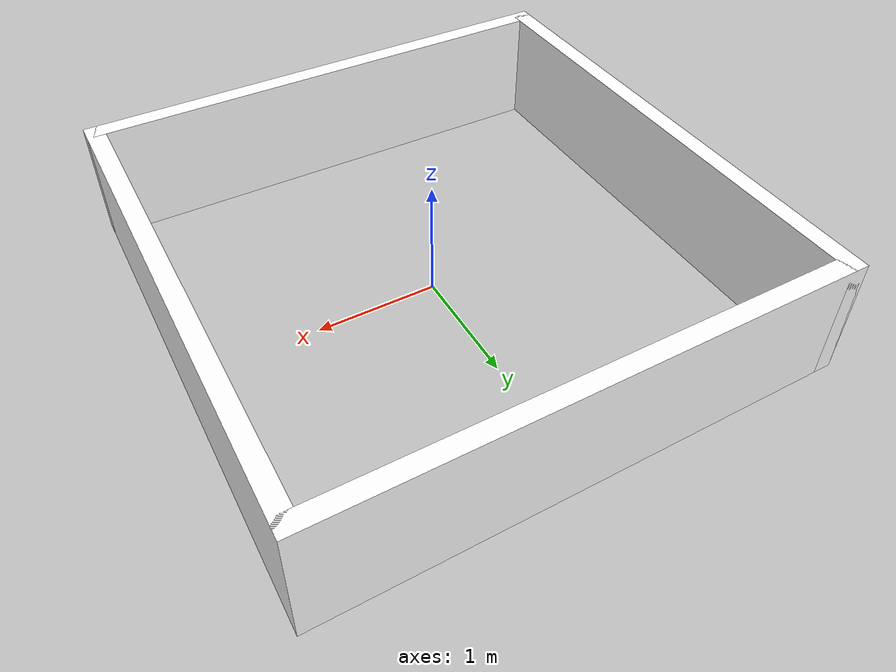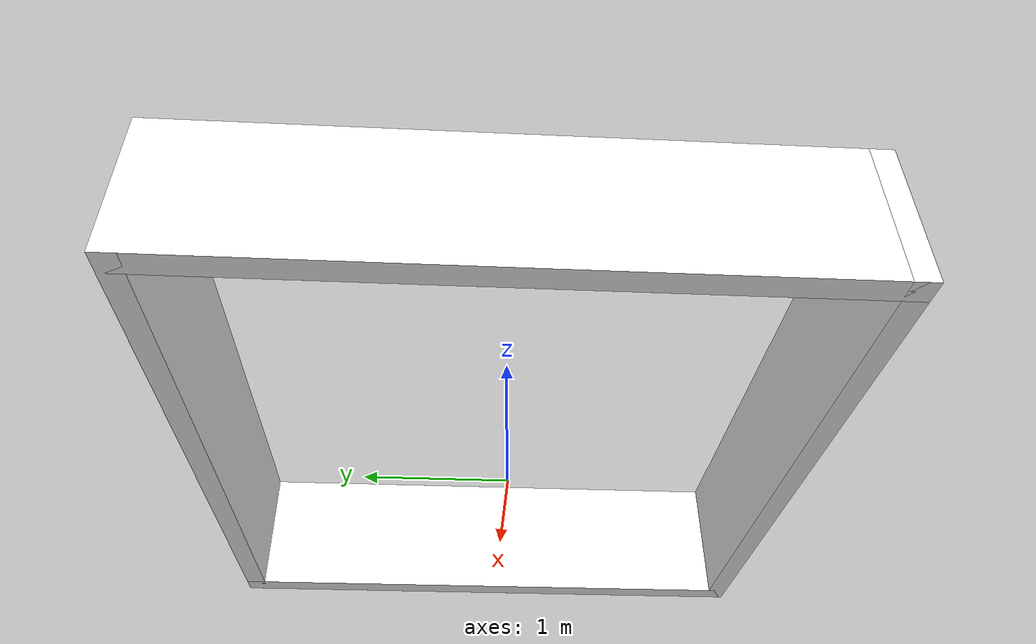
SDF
<?xml version='1.0'?>
<sdf version='1.7'>
  <model name='square.world'>
    <pose>-0.045 0.05 0 0 -0 0</pose>
    <link name='Wall_6'>
      <collision name='Wall_6_Collision'>
        <geometry>
          <box>
            <size>4.26 0.15 1</size>
          </box>
        </geometry>
        <pose>0 0 0.5 0 -0 0</pose>
      </collision>
      <visual name='Wall_6_Visual'>
        <pose>0 0 0.5 0 -0 0</pose>
        <geometry>
          <box>
            <size>4.26 0.15 1</size>
          </box>
        </geometry>
        <material>
          <script>
            <uri>file://media/materials/scripts/gazebo.material</uri>
            <name>Gazebo/Tiles</name>
          </script>
          <ambient>1 1 1 1</ambient>
        </material>
        <meta>
          <layer>0</layer>
        </meta>
      </visual>
      <pose>-0 2.05 0 0 -0 0</pose>
    </link>
    <link name='Wall_7'>
      <collision name='Wall_7_Collision'>
        <geometry>
          <box>
            <size>4.25 0.15 1</size>
          </box>
        </geometry>
        <pose>0 0 0.5 0 -0 0</pose>
      </collision>
      <visual name='Wall_7_Visual'>
        <pose>0 0 0.5 0 -0 0</pose>
        <geometry>
          <box>
            <size>4.25 0.15 1</size>
          </box>
        </geometry>
        <material>
          <script>
            <uri>file://media/materials/scripts/gazebo.material</uri>
            <name>Gazebo/Tiles</name>
          </script>
          <ambient>1 1 1 1</ambient>
        </material>
        <meta>
          <layer>0</layer>
        </meta>
      </visual>
      <pose>2.055 0 0 0 -0 -1.5708</pose>
    </link>
    <link name='Wall_8'>
      <collision name='Wall_8_Collision'>
        <geometry>
          <box>
            <size>4.26 0.15 1</size>
          </box>
        </geometry>
        <pose>0 0 0.5 0 -0 0</pose>
      </collision>
      <visual name='Wall_8_Visual'>
        <pose>0 0 0.5 0 -0 0</pose>
        <geometry>
          <box>
            <size>4.26 0.15 1</size>
          </box>
        </geometry>
        <material>
          <script>
            <uri>file://media/materials/scripts/gazebo.material</uri>
            <name>Gazebo/Tiles</name>
          </script>
          <ambient>1 1 1 1</ambient>
        </material>
        <meta>
          <layer>0</layer>
        </meta>
      </visual>
      <pose>-0 -2.05 0 0 -0 3.14159</pose>
    </link>
    <link name='Wall_9'>
      <collision name='Wall_9_Collision'>
        <geometry>
          <box>
            <size>4.25 0.15 1</size>
          </box>
        </geometry>
        <pose>0 0 0.5 0 -0 0</pose>
      </collision>
      <visual name='Wall_9_Visual'>
        <pose>0 0 0.5 0 -0 0</pose>
        <geometry>
          <box>
            <size>4.25 0.15 1</size>
          </box>
        </geometry>
        <material>
          <script>
            <uri>file://media/materials/scripts/gazebo.material</uri>
            <name>Gazebo/Tiles</name>
          </script>
          <ambient>1 1 1 1</ambient>
        </material>
        <meta>
          <layer>0</layer>
        </meta>
      </visual>
      <pose>-2.055 0 0 0 -0 1.5708</pose>
    </link>
    <static>1</static>
  </model>
</sdf>
